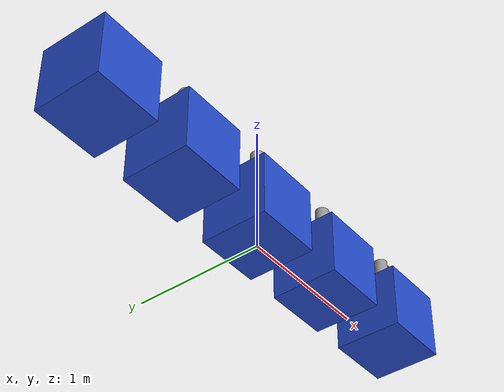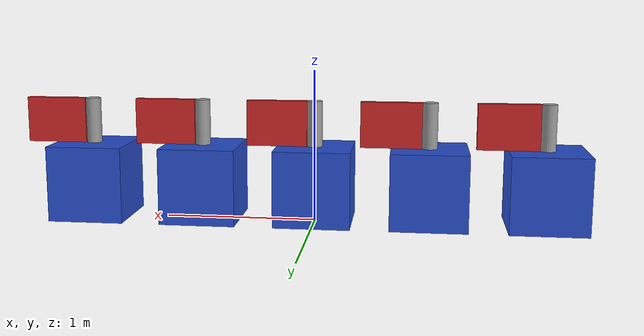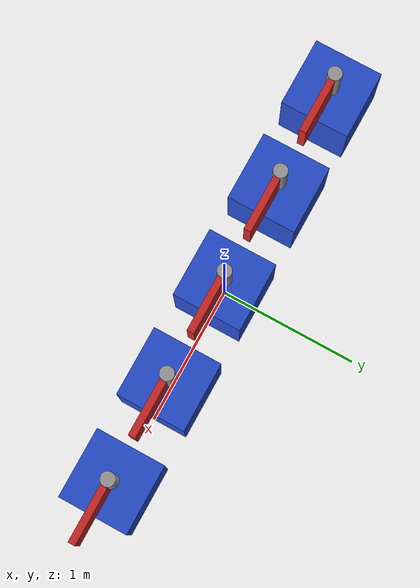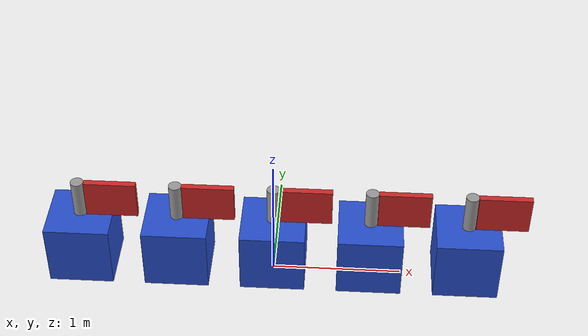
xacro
<?xml version="1.0"?>
<robot xmlns:xacro="http://www.ros.org/wiki/xacro">

    <xacro:property name="stepper_width" value="0.5" />
    <xacro:property name="stepper_height" value="0.5" />
    <xacro:property name="load_width" value="0.05" />
    <xacro:property name="load_length" value="0.4" />
    <xacro:property name="load_height" value="0.3" />
    <xacro:property name="x_position_first_stepper" value="-1.5" />
    <xacro:property name="x_position_stepper_offset" value="0.75" />

    <xacro:property name="axis_radius" value="0.05" />
    <xacro:property name="axis_length" value="0.3" />

    <link name="base_link" />

    <xacro:macro name="stepper_number" params="number">
        <xacro:property name="num" value="${int(number)}"/>
        <link name="stepper_${number}">
            <visual>
                <geometry>
                    <box size="${stepper_width} ${stepper_width} ${stepper_height}" />
                </geometry>
                <origin xyz="0 0 ${stepper_height/ 2.0}" rpy="0 0 0" />
                <material name="blue" />
            </visual>
        </link>

        <link name="axis_${number}">
            <visual>
                <geometry>
                    <cylinder radius="${axis_radius}" length="${axis_length}" />
                </geometry>
                <origin xyz="0 0 0" rpy="0 0 0" />
                <material name="grey" />
            </visual>
        </link>

        <link name="load_${number}">
            <visual>
                <geometry>
                    <box size="${load_length} ${load_width} ${load_height}" />
                </geometry>
                <origin xyz="${load_length/2.0+axis_radius} 0 0" rpy="0 0 0" />
                <material name="red" />
            </visual>
        </link>

        <joint name="stepper_${number}_joint" type="fixed">
        <!-- For stepper 1: attach to base -->
        <xacro:if value="${num == 1}">
            <parent link="base_link" />
            <child link="stepper_${number}" />
            <origin xyz="${x_position_first_stepper} 0 0" rpy="0 0 0" />
        </xacro:if>

        <!-- For all others: attach to previous stepper -->
        <xacro:unless value="${num == 1}">
            <parent link="stepper_${num - 1}" />
            <child link="stepper_${number}" />
            <origin xyz="${x_position_stepper_offset} 0 0" rpy="0 0 0" />
        </xacro:unless>
        </joint>

        <joint name="axis_${number}" type="continuous">
            <parent link="stepper_${number}" />
            <child link="axis_${number}" />
            <origin xyz="0 0 ${stepper_height+axis_length/2.0}" rpy="0 0 0" />
            <axis xyz="0 0 1" />
        </joint>

        <joint name="load_${number}_joint" type="fixed">
            <parent link="axis_${number}" />
            <child link="load_${number}" />
            <origin xyz="0 0 0" rpy="0 0 0" />
            <axis xyz="0 0 1" />
        </joint>
    </xacro:macro>

    <xacro:stepper_number number="1" />
    <xacro:stepper_number number="2" />
    <xacro:stepper_number number="3" />
    <xacro:stepper_number number="4" />
    <xacro:stepper_number number="5" />

</robot>
